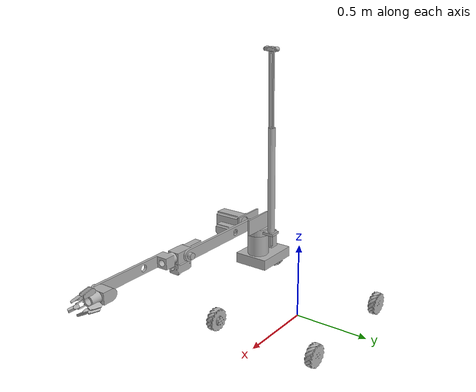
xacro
<?xml version="1.0" ?>
<robot name="Robot" xmlns:xacro="http://www.ros.org/wiki/xacro">

<xacro:include filename="$(find Robot_description)/urdf/materials.xacro" />
<xacro:include filename="$(find Robot_description)/urdf/Robot.trans" />
<xacro:include filename="$(find Robot_description)/urdf/Robot.gazebo" />
<link name="base_link">
  <inertial>
    <origin rpy="0 0 0" xyz="0.004639774814419823 1.4771468453425644e-05 0.22530002486564402"/>
    <mass value="90.2870635836035"/>
    <inertia ixx="10.456164" ixy="1.4e-05" ixz="-0.360506" iyy="16.958749" iyz="0.000256" izz="18.430844"/>
  </inertial>
  <visual>
    <origin rpy="0 0 0" xyz="0 0 0"/>
    <geometry>
      <mesh filename="package://Robot_description/meshes/base_link.stl" scale="0.001 0.001 0.001"/>
    </geometry>
    <material name="silver"/>
  </visual>
  <collision>
    <origin rpy="0 0 0" xyz="0 0 0"/>
    <geometry>
      <mesh filename="package://Robot_description/meshes/base_link.stl" scale="0.001 0.001 0.001"/>
    </geometry>
  </collision>
</link>

<link name="arm_base_1">
  <inertial>
    <origin rpy="0 0 0" xyz="-0.10852318160677482 9.021804964276997e-14 0.07021798038523674"/>
    <mass value="2.9829690964186772"/>
    <inertia ixx="0.017973" ixy="0.0" ixz="-0.002884" iyy="0.024074" iyz="0.0" izz="0.02919"/>
  </inertial>
  <visual>
    <origin rpy="0 0 0" xyz="-0.51905 -0.0 -0.555847"/>
    <geometry>
      <mesh filename="package://Robot_description/meshes/arm_base_1.stl" scale="0.001 0.001 0.001"/>
    </geometry>
    <material name="silver"/>
  </visual>
  <collision>
    <origin rpy="0 0 0" xyz="-0.51905 -0.0 -0.555847"/>
    <geometry>
      <mesh filename="package://Robot_description/meshes/arm_base_1.stl" scale="0.001 0.001 0.001"/>
    </geometry>
  </collision>
</link>

<link name="base_turnable_v14_1">
  <inertial>
    <origin rpy="0 0 0" xyz="0.004673714897230008 0.029934483757072104 0.10053910370878505"/>
    <mass value="7.350921302447738"/>
    <inertia ixx="0.40707" ixy="0.000566" ixz="-0.000291" iyy="0.39669" iyz="-0.055433" izz="0.023619"/>
  </inertial>
  <visual>
    <origin rpy="0 0 0" xyz="-0.44405 0.0 -0.735847"/>
    <geometry>
      <mesh filename="package://Robot_description/meshes/base_turnable_v14_1.stl" scale="0.001 0.001 0.001"/>
    </geometry>
    <material name="silver"/>
  </visual>
  <collision>
    <origin rpy="0 0 0" xyz="-0.44405 0.0 -0.735847"/>
    <geometry>
      <mesh filename="package://Robot_description/meshes/base_turnable_v14_1.stl" scale="0.001 0.001 0.001"/>
    </geometry>
  </collision>
</link>

<link name="NEMA_34_v2_1">
  <inertial>
    <origin rpy="0 0 0" xyz="-3.221002877085155e-06 -0.07651505285685486 4.86867707816252e-07"/>
    <mass value="5.3165200877598835"/>
    <inertia ixx="0.014133" ixy="2e-06" ixz="0.0" iyy="0.005731" iyz="0.0" izz="0.014133"/>
  </inertial>
  <visual>
    <origin rpy="0 0 0" xyz="-0.53405 0.04 -0.820847"/>
    <geometry>
      <mesh filename="package://Robot_description/meshes/NEMA_34_v2_1.stl" scale="0.001 0.001 0.001"/>
    </geometry>
    <material name="silver"/>
  </visual>
  <collision>
    <origin rpy="0 0 0" xyz="-0.53405 0.04 -0.820847"/>
    <geometry>
      <mesh filename="package://Robot_description/meshes/NEMA_34_v2_1.stl" scale="0.001 0.001 0.001"/>
    </geometry>
  </collision>
</link>

<link name="stepper_joint_v6_1">
  <inertial>
    <origin rpy="0 0 0" xyz="1.3000711618360583e-13 -0.0075000000000001316 4.86867707816252e-07"/>
    <mass value="0.03498948817935604"/>
    <inertia ixx="4e-06" ixy="-0.0" ixz="0.0" iyy="7e-06" iyz="-0.0" izz="4e-06"/>
  </inertial>
  <visual>
    <origin rpy="0 0 0" xyz="-0.53405 0.00348 -0.820847"/>
    <geometry>
      <mesh filename="package://Robot_description/meshes/stepper_joint_v6_1.stl" scale="0.001 0.001 0.001"/>
    </geometry>
    <material name="silver"/>
  </visual>
  <collision>
    <origin rpy="0 0 0" xyz="-0.53405 0.00348 -0.820847"/>
    <geometry>
      <mesh filename="package://Robot_description/meshes/stepper_joint_v6_1.stl" scale="0.001 0.001 0.001"/>
    </geometry>
  </collision>
</link>

<link name="link_1_v13_1">
  <inertial>
    <origin rpy="0 0 0" xyz="0.2614820661654448 0.00749999999999987 4.86867707816252e-07"/>
    <mass value="1.2422891158221263"/>
    <inertia ixx="0.000414" ixy="-0.0" ixz="-0.0" iyy="0.03033" iyz="0.0" izz="0.029962"/>
  </inertial>
  <visual>
    <origin rpy="0 0 0" xyz="-0.53405 0.00348 -0.820847"/>
    <geometry>
      <mesh filename="package://Robot_description/meshes/link_1_v13_1.stl" scale="0.001 0.001 0.001"/>
    </geometry>
    <material name="silver"/>
  </visual>
  <collision>
    <origin rpy="0 0 0" xyz="-0.53405 0.00348 -0.820847"/>
    <geometry>
      <mesh filename="package://Robot_description/meshes/link_1_v13_1.stl" scale="0.001 0.001 0.001"/>
    </geometry>
  </collision>
</link>

<link name="joint_v6_1">
  <inertial>
    <origin rpy="0 0 0" xyz="0.01779978543392735 -0.026213672668365277 4.86867707816252e-07"/>
    <mass value="0.8743627585315773"/>
    <inertia ixx="0.000864" ixy="8.4e-05" ixz="0.0" iyy="0.000992" iyz="0.0" izz="0.001253"/>
  </inertial>
  <visual>
    <origin rpy="0 0 0" xyz="-1.04905 0.00348 -0.820847"/>
    <geometry>
      <mesh filename="package://Robot_description/meshes/joint_v6_1.stl" scale="0.001 0.001 0.001"/>
    </geometry>
    <material name="silver"/>
  </visual>
  <collision>
    <origin rpy="0 0 0" xyz="-1.04905 0.00348 -0.820847"/>
    <geometry>
      <mesh filename="package://Robot_description/meshes/joint_v6_1.stl" scale="0.001 0.001 0.001"/>
    </geometry>
  </collision>
</link>

<link name="link_2_v8_1">
  <inertial>
    <origin rpy="0 0 0" xyz="0.17692221361514116 -0.02499852381758487 4.868677079272743e-07"/>
    <mass value="1.5478777520934175"/>
    <inertia ixx="0.001209" ixy="0.002603" ixz="-0.0" iyy="0.032303" iyz="0.0" izz="0.032482"/>
  </inertial>
  <visual>
    <origin rpy="0 0 0" xyz="-1.11905 0.03848 -0.820847"/>
    <geometry>
      <mesh filename="package://Robot_description/meshes/link_2_v8_1.stl" scale="0.001 0.001 0.001"/>
    </geometry>
    <material name="silver"/>
  </visual>
  <collision>
    <origin rpy="0 0 0" xyz="-1.11905 0.03848 -0.820847"/>
    <geometry>
      <mesh filename="package://Robot_description/meshes/link_2_v8_1.stl" scale="0.001 0.001 0.001"/>
    </geometry>
  </collision>
</link>

<link name="joint_end_v3_1">
  <inertial>
    <origin rpy="0 0 0" xyz="0.011579118062804206 0.03379678599677132 4.868677079272743e-07"/>
    <mass value="1.063293416063342"/>
    <inertia ixx="0.00115" ixy="-7.6e-05" ixz="-0.0" iyy="0.000747" iyz="-0.0" izz="0.001353"/>
  </inertial>
  <visual>
    <origin rpy="0 0 0" xyz="-1.57405 0.06848 -0.820847"/>
    <geometry>
      <mesh filename="package://Robot_description/meshes/joint_end_v3_1.stl" scale="0.001 0.001 0.001"/>
    </geometry>
    <material name="silver"/>
  </visual>
  <collision>
    <origin rpy="0 0 0" xyz="-1.57405 0.06848 -0.820847"/>
    <geometry>
      <mesh filename="package://Robot_description/meshes/joint_end_v3_1.stl" scale="0.001 0.001 0.001"/>
    </geometry>
  </collision>
</link>

<link name="NEMA_24_v1_1">
  <inertial>
    <origin rpy="0 0 0" xyz="7.655954076257743e-08 2.556813320462289e-06 0.04795128172176"/>
    <mass value="2.4982959259379585"/>
    <inertia ixx="0.002718" ixy="0.0" ixz="-0.0" iyy="0.002718" iyz="-0.0" izz="0.001293"/>
  </inertial>
  <visual>
    <origin rpy="0 0 0" xyz="-0.31905 0.0 -0.615847"/>
    <geometry>
      <mesh filename="package://Robot_description/meshes/NEMA_24_v1_1.stl" scale="0.001 0.001 0.001"/>
    </geometry>
    <material name="silver"/>
  </visual>
  <collision>
    <origin rpy="0 0 0" xyz="-0.31905 0.0 -0.615847"/>
    <geometry>
      <mesh filename="package://Robot_description/meshes/NEMA_24_v1_1.stl" scale="0.001 0.001 0.001"/>
    </geometry>
  </collision>
</link>

<link name="NEMA_24_v1__1__1">
  <inertial>
    <origin rpy="0 0 0" xyz="7.655954081808858e-08 -0.047950794854052424 3.0436810282141735e-06"/>
    <mass value="2.4982959259379585"/>
    <inertia ixx="0.002718" ixy="0.0" ixz="0.0" iyy="0.001293" iyz="0.0" izz="0.002718"/>
  </inertial>
  <visual>
    <origin rpy="0 0 0" xyz="-0.67155 0.00348 -0.820847"/>
    <geometry>
      <mesh filename="package://Robot_description/meshes/NEMA_24_v1__1__1.stl" scale="0.001 0.001 0.001"/>
    </geometry>
    <material name="silver"/>
  </visual>
  <collision>
    <origin rpy="0 0 0" xyz="-0.67155 0.00348 -0.820847"/>
    <geometry>
      <mesh filename="package://Robot_description/meshes/NEMA_24_v1__1__1.stl" scale="0.001 0.001 0.001"/>
    </geometry>
  </collision>
</link>

<link name="NEMA_24_v1__2__1">
  <inertial>
    <origin rpy="0 0 0" xyz="-0.047950794854052514 -7.655954092217199e-08 3.0436810282141735e-06"/>
    <mass value="2.4982959259379585"/>
    <inertia ixx="0.001293" ixy="-0.0" ixz="0.0" iyy="0.002718" iyz="-0.0" izz="0.002718"/>
  </inertial>
  <visual>
    <origin rpy="0 0 0" xyz="-1.01905 0.03848 -0.820847"/>
    <geometry>
      <mesh filename="package://Robot_description/meshes/NEMA_24_v1__2__1.stl" scale="0.001 0.001 0.001"/>
    </geometry>
    <material name="silver"/>
  </visual>
  <collision>
    <origin rpy="0 0 0" xyz="-1.01905 0.03848 -0.820847"/>
    <geometry>
      <mesh filename="package://Robot_description/meshes/NEMA_24_v1__2__1.stl" scale="0.001 0.001 0.001"/>
    </geometry>
  </collision>
</link>

<link name="NEMA_24_v1__3__1">
  <inertial>
    <origin rpy="0 0 0" xyz="0.0009492051459472073 7.655954062379955e-08 -0.02980206994561252"/>
    <mass value="2.4982959259379585"/>
    <inertia ixx="0.001293" ixy="0.0" ixz="-0.0" iyy="0.002718" iyz="-0.0" izz="0.002718"/>
  </inertial>
  <visual>
    <origin rpy="0 0 0" xyz="-1.06905 0.03598 -0.790847"/>
    <geometry>
      <mesh filename="package://Robot_description/meshes/NEMA_24_v1__3__1.stl" scale="0.001 0.001 0.001"/>
    </geometry>
    <material name="silver"/>
  </visual>
  <collision>
    <origin rpy="0 0 0" xyz="-1.06905 0.03598 -0.790847"/>
    <geometry>
      <mesh filename="package://Robot_description/meshes/NEMA_24_v1__3__1.stl" scale="0.001 0.001 0.001"/>
    </geometry>
  </collision>
</link>

<link name="Double_Wheel__Thin__v11_v3_1">
  <inertial>
    <origin rpy="0 0 0" xyz="-3.5966591938052517e-07 0.027463106395432424 3.514880312152635e-07"/>
    <mass value="3.260021800926923"/>
    <inertia ixx="0.005841" ixy="-0.0" ixz="-0.0" iyy="0.009383" iyz="0.0" izz="0.005841"/>
  </inertial>
  <visual>
    <origin rpy="0 0 0" xyz="-0.394801 0.390178 -0.033729"/>
    <geometry>
      <mesh filename="package://Robot_description/meshes/Double_Wheel__Thin__v11_v3_1.stl" scale="0.001 0.001 0.001"/>
    </geometry>
    <material name="silver"/>
  </visual>
  <collision>
    <origin rpy="0 0 0" xyz="-0.394801 0.390178 -0.033729"/>
    <geometry>
      <mesh filename="package://Robot_description/meshes/Double_Wheel__Thin__v11_v3_1.stl" scale="0.001 0.001 0.001"/>
    </geometry>
  </collision>
</link>

<link name="Double_Wheel__Thin__v11_v3__1__1">
  <inertial>
    <origin rpy="0 0 0" xyz="2.096467722756401e-07 -0.02746330979092404 3.5148803025075726e-07"/>
    <mass value="3.260021800926923"/>
    <inertia ixx="0.005841" ixy="-0.0" ixz="0.0" iyy="0.009383" iyz="-0.0" izz="0.005841"/>
  </inertial>
  <visual>
    <origin rpy="0 0 0" xyz="-0.394579 -0.390822 -0.033729"/>
    <geometry>
      <mesh filename="package://Robot_description/meshes/Double_Wheel__Thin__v11_v3__1__1.stl" scale="0.001 0.001 0.001"/>
    </geometry>
    <material name="silver"/>
  </visual>
  <collision>
    <origin rpy="0 0 0" xyz="-0.394579 -0.390822 -0.033729"/>
    <geometry>
      <mesh filename="package://Robot_description/meshes/Double_Wheel__Thin__v11_v3__1__1.stl" scale="0.001 0.001 0.001"/>
    </geometry>
  </collision>
</link>

<link name="Double_Wheel__Thin__v11_v3__2__1">
  <inertial>
    <origin rpy="0 0 0" xyz="2.0964677233115125e-07 -0.027463309790926815 3.51488031312408e-07"/>
    <mass value="3.260021800926923"/>
    <inertia ixx="0.005841" ixy="-0.0" ixz="0.0" iyy="0.009383" iyz="-0.0" izz="0.005841"/>
  </inertial>
  <visual>
    <origin rpy="0 0 0" xyz="0.395421 -0.390822 -0.033729"/>
    <geometry>
      <mesh filename="package://Robot_description/meshes/Double_Wheel__Thin__v11_v3__2__1.stl" scale="0.001 0.001 0.001"/>
    </geometry>
    <material name="silver"/>
  </visual>
  <collision>
    <origin rpy="0 0 0" xyz="0.395421 -0.390822 -0.033729"/>
    <geometry>
      <mesh filename="package://Robot_description/meshes/Double_Wheel__Thin__v11_v3__2__1.stl" scale="0.001 0.001 0.001"/>
    </geometry>
  </collision>
</link>

<link name="Double_Wheel__Thin__v11_v3__3__1">
  <inertial>
    <origin rpy="0 0 0" xyz="-3.596659204907482e-07 0.02746310639543431 3.514880312152635e-07"/>
    <mass value="3.260021800926923"/>
    <inertia ixx="0.005841" ixy="-0.0" ixz="-0.0" iyy="0.009383" iyz="0.0" izz="0.005841"/>
  </inertial>
  <visual>
    <origin rpy="0 0 0" xyz="0.395199 0.390178 -0.033729"/>
    <geometry>
      <mesh filename="package://Robot_description/meshes/Double_Wheel__Thin__v11_v3__3__1.stl" scale="0.001 0.001 0.001"/>
    </geometry>
    <material name="silver"/>
  </visual>
  <collision>
    <origin rpy="0 0 0" xyz="0.395199 0.390178 -0.033729"/>
    <geometry>
      <mesh filename="package://Robot_description/meshes/Double_Wheel__Thin__v11_v3__3__1.stl" scale="0.001 0.001 0.001"/>
    </geometry>
  </collision>
</link>

<link name="Intel_RealSense_D435_v3_1">
  <inertial>
    <origin rpy="0 0 0" xyz="0.0010440004277676995 0.0010696020063957895 0.01201086694379927"/>
    <mass value="0.2739287989936542"/>
    <inertia ixx="0.000177" ixy="2e-06" ixz="0.0" iyy="2.6e-05" iyz="-0.0" izz="0.000178"/>
  </inertial>
  <visual>
    <origin rpy="0 0 0" xyz="-0.44905 -0.09 -1.765675"/>
    <geometry>
      <mesh filename="package://Robot_description/meshes/Intel_RealSense_D435_v3_1.stl" scale="0.001 0.001 0.001"/>
    </geometry>
    <material name="silver"/>
  </visual>
  <collision>
    <origin rpy="0 0 0" xyz="-0.44905 -0.09 -1.765675"/>
    <geometry>
      <mesh filename="package://Robot_description/meshes/Intel_RealSense_D435_v3_1.stl" scale="0.001 0.001 0.001"/>
    </geometry>
  </collision>
</link>

<link name="gripper_export_v2_1">
  <inertial>
    <origin rpy="0 0 0" xyz="0.036736557885818755 8.738047091449985e-10 4.869867763490632e-07"/>
    <mass value="1.1315792783817065"/>
    <inertia ixx="0.001318" ixy="-0.0" ixz="-0.0" iyy="0.001126" iyz="0.0" izz="0.001126"/>
  </inertial>
  <visual>
    <origin rpy="0 0 0" xyz="-1.62405 0.02848 -0.820847"/>
    <geometry>
      <mesh filename="package://Robot_description/meshes/gripper_export_v2_1.stl" scale="0.001 0.001 0.001"/>
    </geometry>
    <material name="silver"/>
  </visual>
  <collision>
    <origin rpy="0 0 0" xyz="-1.62405 0.02848 -0.820847"/>
    <geometry>
      <mesh filename="package://Robot_description/meshes/gripper_export_v2_1.stl" scale="0.001 0.001 0.001"/>
    </geometry>
  </collision>
</link>

<link name="EndEffector_v1_1">
  <inertial>
    <origin rpy="0 0 0" xyz="0.022979968590663757 3.2830825211216386e-10 0.004865820638522034"/>
    <mass value="0.07511526055866109"/>
    <inertia ixx="3e-06" ixy="-0.0" ixz="-0.0" iyy="1.7e-05" iyz="0.0" izz="1.8e-05"/>
  </inertial>
  <visual>
    <origin rpy="0 0 0" xyz="-1.70855 0.02848 -0.853347"/>
    <geometry>
      <mesh filename="package://Robot_description/meshes/EndEffector_v1_1.stl" scale="0.001 0.001 0.001"/>
    </geometry>
    <material name="silver"/>
  </visual>
  <collision>
    <origin rpy="0 0 0" xyz="-1.70855 0.02848 -0.853347"/>
    <geometry>
      <mesh filename="package://Robot_description/meshes/EndEffector_v1_1.stl" scale="0.001 0.001 0.001"/>
    </geometry>
  </collision>
</link>

<link name="EndEffector_v1__1__1">
  <inertial>
    <origin rpy="0 0 0" xyz="0.02297996859066398 -0.004213328299858453 -0.0024321799597640803"/>
    <mass value="0.07511526055866109"/>
    <inertia ixx="3e-06" ixy="0.0" ixz="0.0" iyy="1.8e-05" iyz="0.0" izz="1.8e-05"/>
  </inertial>
  <visual>
    <origin rpy="0 0 0" xyz="-1.70855 0.056626 -0.804597"/>
    <geometry>
      <mesh filename="package://Robot_description/meshes/EndEffector_v1__1__1.stl" scale="0.001 0.001 0.001"/>
    </geometry>
    <material name="silver"/>
  </visual>
  <collision>
    <origin rpy="0 0 0" xyz="-1.70855 0.056626 -0.804597"/>
    <geometry>
      <mesh filename="package://Robot_description/meshes/EndEffector_v1__1__1.stl" scale="0.001 0.001 0.001"/>
    </geometry>
  </collision>
</link>

<link name="EndEffector_v1__2__1">
  <inertial>
    <origin rpy="0 0 0" xyz="0.02297996859066398 0.004213328102255326 -0.002432180302022635"/>
    <mass value="0.07511526055866109"/>
    <inertia ixx="3e-06" ixy="-0.0" ixz="0.0" iyy="1.8e-05" iyz="-0.0" izz="1.8e-05"/>
  </inertial>
  <visual>
    <origin rpy="0 0 0" xyz="-1.70855 0.000334 -0.804597"/>
    <geometry>
      <mesh filename="package://Robot_description/meshes/EndEffector_v1__2__1.stl" scale="0.001 0.001 0.001"/>
    </geometry>
    <material name="silver"/>
  </visual>
  <collision>
    <origin rpy="0 0 0" xyz="-1.70855 0.000334 -0.804597"/>
    <geometry>
      <mesh filename="package://Robot_description/meshes/EndEffector_v1__2__1.stl" scale="0.001 0.001 0.001"/>
    </geometry>
  </collision>
</link>

<joint name="Rigid1" type="fixed">
  <origin rpy="0 0 0" xyz="0.51905 0.0 0.555847"/>
  <parent link="base_link"/>
  <child link="arm_base_1"/>
</joint>

<joint name="Rev2" type="continuous">
  <origin rpy="0 0 0" xyz="-0.075 -0.0 0.18"/>
  <parent link="arm_base_1"/>
  <child link="base_turnable_v14_1"/>
  <axis xyz="-0.0 0.0 -1.0"/>
</joint>

<joint name="Rigid3" type="fixed">
  <origin rpy="0 0 0" xyz="0.09 -0.04 0.085"/>
  <parent link="base_turnable_v14_1"/>
  <child link="NEMA_34_v2_1"/>
</joint>

<joint name="Rigid4" type="fixed">
  <origin rpy="0 0 0" xyz="0.0 0.03652 0.0"/>
  <parent link="NEMA_34_v2_1"/>
  <child link="stepper_joint_v6_1"/>
</joint>

<joint name="Rev5" type="continuous">
  <origin rpy="0 0 0" xyz="0.0 0.0 0.0"/>
  <parent link="stepper_joint_v6_1"/>
  <child link="link_1_v13_1"/>
  <axis xyz="-0.0 1.0 -0.0"/>
</joint>

<joint name="Rev6" type="continuous">
  <origin rpy="0 0 0" xyz="0.515 0.0 0.0"/>
  <parent link="link_1_v13_1"/>
  <child link="joint_v6_1"/>
  <axis xyz="-0.0 1.0 -0.0"/>
</joint>

<joint name="Rev7" type="continuous">
  <origin rpy="0 0 0" xyz="0.07 -0.035 0.0"/>
  <parent link="joint_v6_1"/>
  <child link="link_2_v8_1"/>
  <axis xyz="-1.0 -0.0 -0.0"/>
</joint>

<joint name="Rev8" type="continuous">
  <origin rpy="0 0 0" xyz="0.455 -0.03 0.0"/>
  <parent link="link_2_v8_1"/>
  <child link="joint_end_v3_1"/>
  <axis xyz="0.0 -1.0 0.0"/>
</joint>

<joint name="Rigid9" type="fixed">
  <origin rpy="0 0 0" xyz="-0.2 -0.0 0.06"/>
  <parent link="arm_base_1"/>
  <child link="NEMA_24_v1_1"/>
</joint>

<joint name="Rigid10" type="fixed">
  <origin rpy="0 0 0" xyz="0.1375 0.0 0.0"/>
  <parent link="link_1_v13_1"/>
  <child link="NEMA_24_v1__1__1"/>
</joint>

<joint name="Rigid11" type="fixed">
  <origin rpy="0 0 0" xyz="-0.03 -0.035 0.0"/>
  <parent link="joint_v6_1"/>
  <child link="NEMA_24_v1__2__1"/>
</joint>

<joint name="Rigid12" type="fixed">
  <origin rpy="0 0 0" xyz="0.02 -0.0325 -0.03"/>
  <parent link="joint_v6_1"/>
  <child link="NEMA_24_v1__3__1"/>
</joint>

<joint name="Rev13" type="continuous">
  <origin rpy="0 0 0" xyz="0.394801 -0.390178 0.033729"/>
  <parent link="base_link"/>
  <child link="Double_Wheel__Thin__v11_v3_1"/>
  <axis xyz="0.0 1.0 -0.0"/>
</joint>

<joint name="Rev14" type="continuous">
  <origin rpy="0 0 0" xyz="0.394579 0.390822 0.033729"/>
  <parent link="base_link"/>
  <child link="Double_Wheel__Thin__v11_v3__1__1"/>
  <axis xyz="0.0 -1.0 -0.0"/>
</joint>

<joint name="Rev15" type="continuous">
  <origin rpy="0 0 0" xyz="-0.395421 0.390822 0.033729"/>
  <parent link="base_link"/>
  <child link="Double_Wheel__Thin__v11_v3__2__1"/>
  <axis xyz="0.0 -1.0 -0.0"/>
</joint>

<joint name="Rev16" type="continuous">
  <origin rpy="0 0 0" xyz="-0.395199 -0.390178 0.033729"/>
  <parent link="base_link"/>
  <child link="Double_Wheel__Thin__v11_v3__3__1"/>
  <axis xyz="0.0 1.0 -0.0"/>
</joint>

<joint name="Rigid17" type="fixed">
  <origin rpy="0 0 0" xyz="0.005 0.09 1.029828"/>
  <parent link="base_turnable_v14_1"/>
  <child link="Intel_RealSense_D435_v3_1"/>
</joint>

<joint name="Rigid18" type="fixed">
  <origin rpy="0 0 0" xyz="0.05 0.04 0.0"/>
  <parent link="joint_end_v3_1"/>
  <child link="gripper_export_v2_1"/>
</joint>

<joint name="Rev19" type="continuous">
  <origin rpy="0 0 0" xyz="0.0845 0.0 0.0325"/>
  <parent link="gripper_export_v2_1"/>
  <child link="EndEffector_v1_1"/>
  <axis xyz="0.0 -1.0 0.0"/>
</joint>

<joint name="Rev20" type="continuous">
  <origin rpy="0 0 0" xyz="0.0845 -0.028146 -0.01625"/>
  <parent link="gripper_export_v2_1"/>
  <child link="EndEffector_v1__1__1"/>
  <axis xyz="0.0 0.5 -0.866025"/>
</joint>

<joint name="Rev21" type="continuous">
  <origin rpy="0 0 0" xyz="0.0845 0.028146 -0.01625"/>
  <parent link="gripper_export_v2_1"/>
  <child link="EndEffector_v1__2__1"/>
  <axis xyz="-0.0 0.5 0.866025"/>
</joint>

</robot>

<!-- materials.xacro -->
<robot name="robot" xmlns:xacro="http://www.ros.org/wiki/xacro" >

<material name="silver">
  <color rgba="0.700 0.700 0.700 1.000"/>
</material>

</robot>

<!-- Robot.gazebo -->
<robot name="Robot" xmlns:xacro="http://www.ros.org/wiki/xacro" >

<xacro:property name="body_color" value="Gazebo/Silver" />

<gazebo>
  <plugin filename="libgazebo_ros_control.so" name="control"/>
</gazebo>
<gazebo reference="base_link">
  <material>${body_color}</material>
  <mu1>0.2</mu1>
  <mu2>0.2</mu2>
  <selfCollide>true</selfCollide>
  <gravity>true</gravity>
</gazebo>

<gazebo reference="arm_base_1">
  <material>${body_color}</material>
  <mu1>0.2</mu1>
  <mu2>0.2</mu2>
  <selfCollide>true</selfCollide>
</gazebo>

<gazebo reference="base_turnable_v14_1">
  <material>${body_color}</material>
  <mu1>0.2</mu1>
  <mu2>0.2</mu2>
  <selfCollide>true</selfCollide>
</gazebo>

<gazebo reference="NEMA_34_v2_1">
  <material>${body_color}</material>
  <mu1>0.2</mu1>
  <mu2>0.2</mu2>
  <selfCollide>true</selfCollide>
</gazebo>

<gazebo reference="stepper_joint_v6_1">
  <material>${body_color}</material>
  <mu1>0.2</mu1>
  <mu2>0.2</mu2>
  <selfCollide>true</selfCollide>
</gazebo>

<gazebo reference="link_1_v13_1">
  <material>${body_color}</material>
  <mu1>0.2</mu1>
  <mu2>0.2</mu2>
  <selfCollide>true</selfCollide>
</gazebo>

<gazebo reference="joint_v6_1">
  <material>${body_color}</material>
  <mu1>0.2</mu1>
  <mu2>0.2</mu2>
  <selfCollide>true</selfCollide>
</gazebo>

<gazebo reference="link_2_v8_1">
  <material>${body_color}</material>
  <mu1>0.2</mu1>
  <mu2>0.2</mu2>
  <selfCollide>true</selfCollide>
</gazebo>

<gazebo reference="joint_end_v3_1">
  <material>${body_color}</material>
  <mu1>0.2</mu1>
  <mu2>0.2</mu2>
  <selfCollide>true</selfCollide>
</gazebo>

<gazebo reference="NEMA_24_v1_1">
  <material>${body_color}</material>
  <mu1>0.2</mu1>
  <mu2>0.2</mu2>
  <selfCollide>true</selfCollide>
</gazebo>

<gazebo reference="NEMA_24_v1__1__1">
  <material>${body_color}</material>
  <mu1>0.2</mu1>
  <mu2>0.2</mu2>
  <selfCollide>true</selfCollide>
</gazebo>

<gazebo reference="NEMA_24_v1__2__1">
  <material>${body_color}</material>
  <mu1>0.2</mu1>
  <mu2>0.2</mu2>
  <selfCollide>true</selfCollide>
</gazebo>

<gazebo reference="NEMA_24_v1__3__1">
  <material>${body_color}</material>
  <mu1>0.2</mu1>
  <mu2>0.2</mu2>
  <selfCollide>true</selfCollide>
</gazebo>

<gazebo reference="Double_Wheel__Thin__v11_v3_1">
  <material>${body_color}</material>
  <mu1>0.2</mu1>
  <mu2>0.2</mu2>
  <selfCollide>true</selfCollide>
</gazebo>

<gazebo reference="Double_Wheel__Thin__v11_v3__1__1">
  <material>${body_color}</material>
  <mu1>0.2</mu1>
  <mu2>0.2</mu2>
  <selfCollide>true</selfCollide>
</gazebo>

<gazebo reference="Double_Wheel__Thin__v11_v3__2__1">
  <material>${body_color}</material>
  <mu1>0.2</mu1>
  <mu2>0.2</mu2>
  <selfCollide>true</selfCollide>
</gazebo>

<gazebo reference="Double_Wheel__Thin__v11_v3__3__1">
  <material>${body_color}</material>
  <mu1>0.2</mu1>
  <mu2>0.2</mu2>
  <selfCollide>true</selfCollide>
</gazebo>

<gazebo reference="Intel_RealSense_D435_v3_1">
  <material>${body_color}</material>
  <mu1>0.2</mu1>
  <mu2>0.2</mu2>
  <selfCollide>true</selfCollide>
</gazebo>

<gazebo reference="gripper_export_v2_1">
  <material>${body_color}</material>
  <mu1>0.2</mu1>
  <mu2>0.2</mu2>
  <selfCollide>true</selfCollide>
</gazebo>

<gazebo reference="EndEffector_v1_1">
  <material>${body_color}</material>
  <mu1>0.2</mu1>
  <mu2>0.2</mu2>
  <selfCollide>true</selfCollide>
</gazebo>

<gazebo reference="EndEffector_v1__1__1">
  <material>${body_color}</material>
  <mu1>0.2</mu1>
  <mu2>0.2</mu2>
  <selfCollide>true</selfCollide>
</gazebo>

<gazebo reference="EndEffector_v1__2__1">
  <material>${body_color}</material>
  <mu1>0.2</mu1>
  <mu2>0.2</mu2>
  <selfCollide>true</selfCollide>
</gazebo>

</robot>
